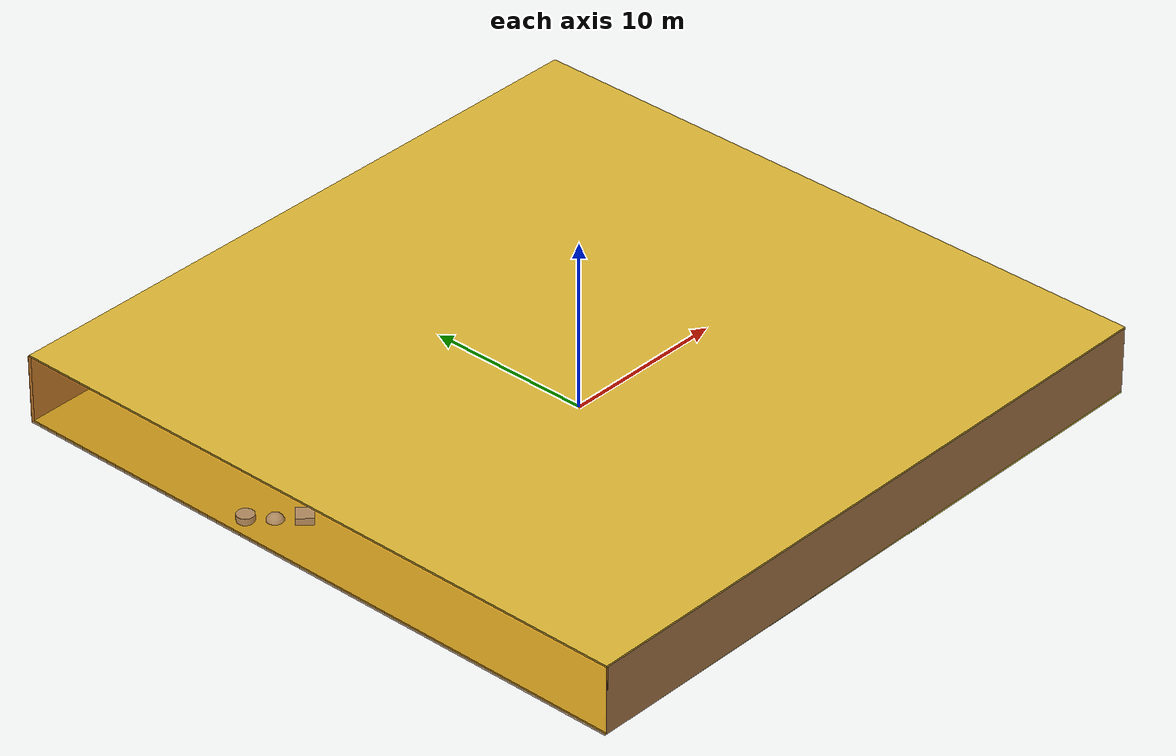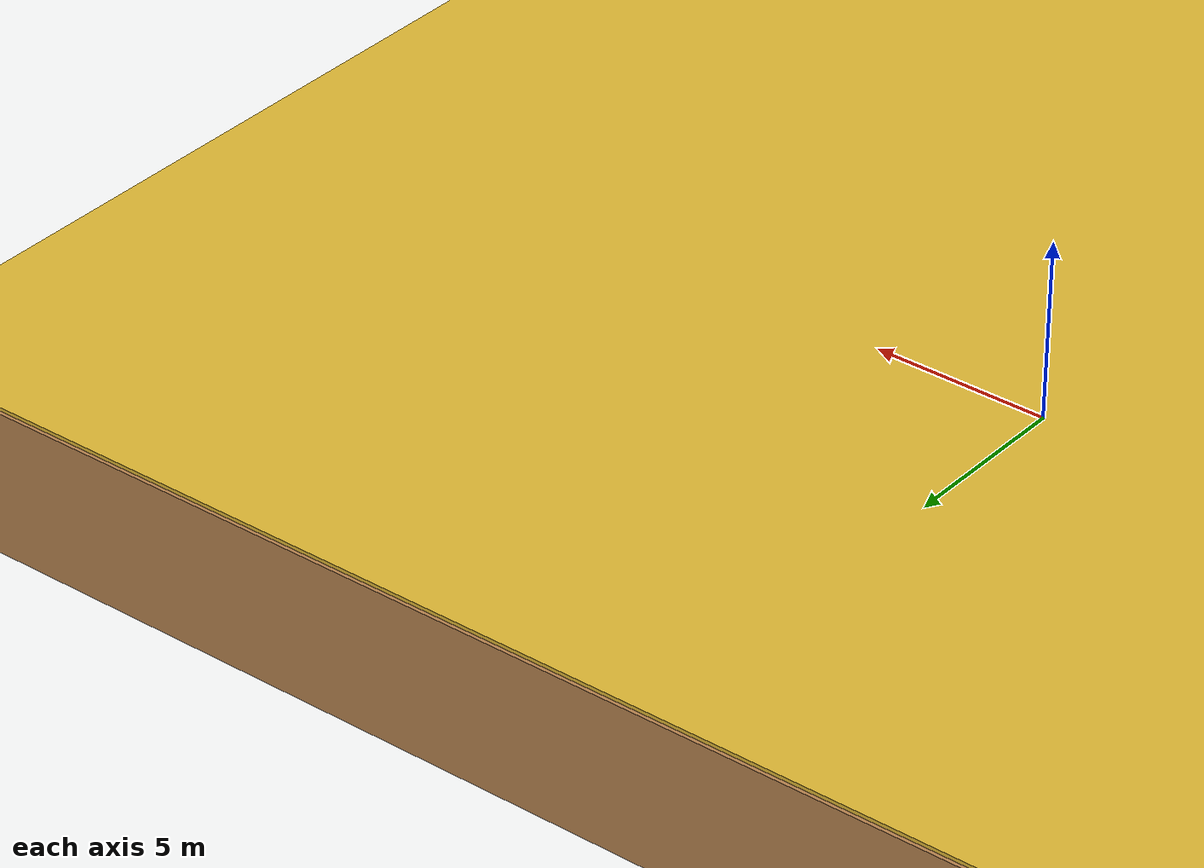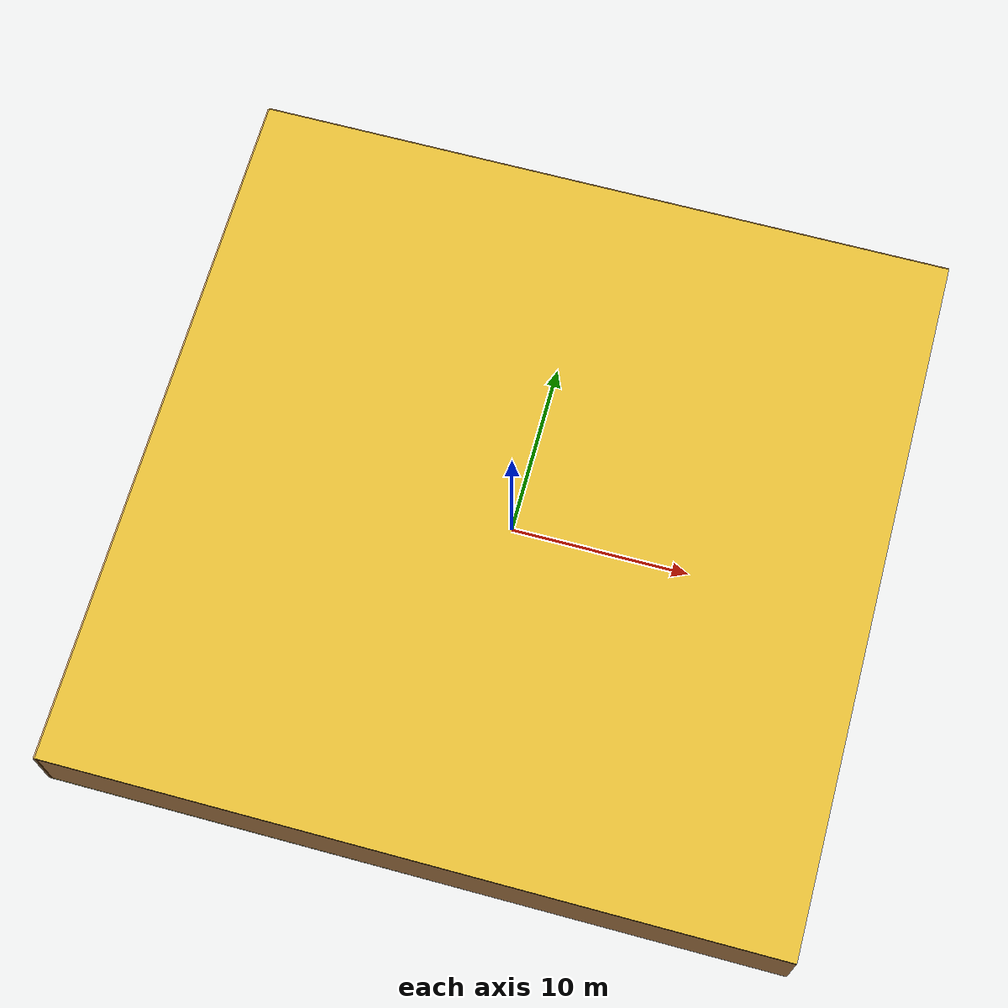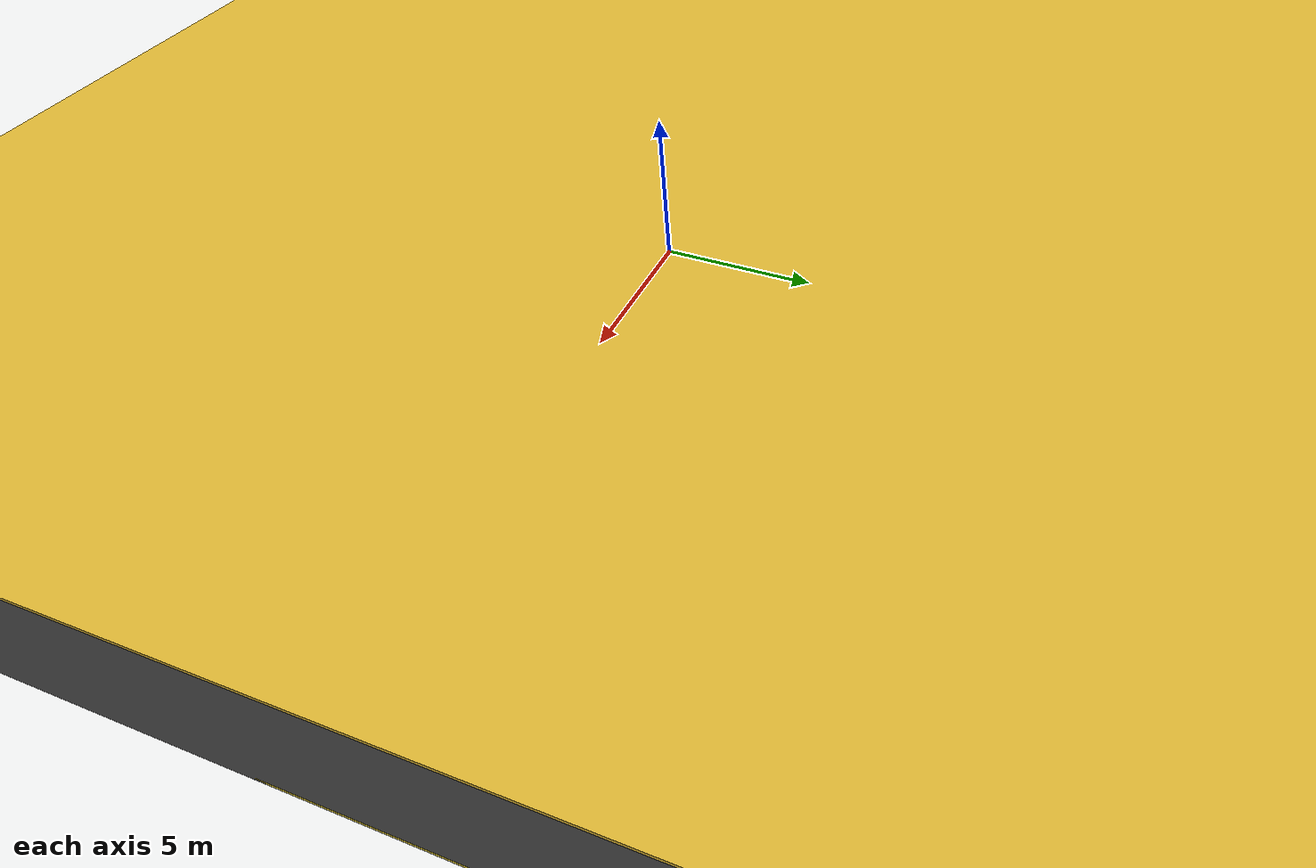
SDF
<sdf version="1.4">
 <world name="default">
  <physics type="ode">
   <max_step_size>0.001</max_step_size>
   <real_time_factor>1</real_time_factor>
   <real_time_update_rate>1000</real_time_update_rate>
   <gravity>0 0 -9.8</gravity>
  </physics>
  <scene><ambient>0.4 0.4 0.4 1</ambient><background>0.7 0.7 0.7 1</background><shadows>1</shadows></scene>
  <model name="Surrounding">
   <static>1</static>
   <link name="Ceiling">
    <collision name="Ceiling_Collision"><geometry><box><size>40 40 0.1</size></box></geometry></collision>
    <visual name="Ceiling_Visual">
     <geometry><box><size>40 40 0.1</size></box></geometry>
     <material>
      <script><uri>file://media/materials/scripts/gazebo.material</uri><name>Gazebo/Gold</name></script>
     </material>
    </visual>
    <pose>0 0 4.05 0 0 0</pose>
   </link>
   <link name="Wall_South">
    <collision name="Wall_South_Collision">
     <geometry><box><size>40 0 4</size></box></geometry>
     <pose>0 0 2 0 -0 0</pose>
    </collision>
    <visual name="Wall_South_Visual">
     <pose>0 0 2 0 -0 0</pose>
     <geometry><box><size>40 0 4</size></box></geometry>
     <material>
      <script><uri>file://media/materials/scripts/gazebo.material</uri><name>Gazebo/WoodFloor</name></script>
     </material>
    </visual>
    <velocity_decay><linear>0</linear><angular>0</angular></velocity_decay>
    <pose>0 -20 0 0 -0 0</pose>
   </link>
   <link name="Wall_East">
    <collision name="Wall_21_Collision">
     <geometry><box><size>40 0 4</size></box></geometry>
     <pose>0 0 2 0 -0 0</pose>
    </collision>
    <visual name="Wall_21_Visual">
     <pose>0 0 2 0 -0 0</pose>
     <geometry><box><size>40 0 4</size></box></geometry>
     <material>
      <script><uri>file://media/materials/scripts/gazebo.material</uri><name>Gazebo/Road</name></script>
     </material>
    </visual>
    <velocity_decay><linear>0</linear><angular>0</angular></velocity_decay>
    <pose>20 0 0 0 -0 1.5708</pose>
   </link>
   <link name="Wall_North">
    <collision name="Wall_22_Collision">
     <geometry><box><size>40 0.2 4</size></box></geometry>
     <pose>0 0 2 0 -0 0</pose>
    </collision>
    <visual name="Wall_22_Visual">
     <pose>0 0 2 0 -0 0</pose>
     <geometry><box><size>40 0.2 4</size></box></geometry>
     <material>
      <script><uri>file://media/materials/scripts/gazebo.material</uri><name>Gazebo/WoodPallet</name></script>
     </material>
    </visual>
    <velocity_decay><linear>0</linear><angular>0</angular></velocity_decay>
    <pose>0 20 0 0 -0 0</pose>
   </link>
   <link name="Wall_West">
    <collision name="Wall_23_Collision">
     <geometry><box><size>40 0.2 4</size></box></geometry>
     <pose>0 0 2 0 -0 0</pose>
    </collision>
    <visual name="Wall_23_Visual">
     <pose>0 0 2 0 -0 0</pose>
     <geometry><box><size>40 0.2 4</size></box></geometry>
     <material>
      <script>
       <uri>file://media/materials/scripts/gazebo.material</uri>
       <name>Gazebo/OrangeTransparent</name>
      </script>
     </material>
    </visual>
    <velocity_decay><linear>0</linear><angular>0</angular></velocity_decay>
    <pose>-20 0 0 0 0 -1.5708</pose>
   </link>
   <link name="Ground_link">
    <collision name="collision">
     <pose>0 0 .05 0 -0 0</pose>
     <geometry><box><size>40 40 0.1</size></box></geometry>
    </collision>
    <visual name="visual">
     <pose>0 0 .05 0 -0 0</pose>
     <geometry><box><size>40 40 0.1</size></box></geometry>
     <material>
      <script><uri>file://media/materials/scripts/gazebo.material</uri><name>Gazebo/ZincYellow</name></script>
     </material>
    </visual>
   </link>
   <static>1</static>
  </model>
  <spherical_coordinates>
   <surface_model>EARTH_WGS84</surface_model>
   <latitude_deg>0</latitude_deg>
   <longitude_deg>0</longitude_deg>
   <elevation>0</elevation>
   <heading_deg>0</heading_deg>
  </spherical_coordinates>
  <light name="lightball_0" type="diffuse">
   <diffuse>0.8 0.8 0.8 1</diffuse>
   <specular>0.2 0.2 0.2 1</specular>
   <attenuation>
    <range>100</range>
    <constant>0.7</constant>
    <linear>0.01</linear>
    <quadratic>0.001</quadratic>
   </attenuation>
   <direction>-0.5 0.1 -0.9</direction>
   <pose>-1.03677643835 6.9306158238 2.58871568664 0 0 0</pose>
  </light>
  <light name="lightball_1" type="diffuse">
   <diffuse>0.8 0.8 0.8 1</diffuse>
   <specular>0.2 0.2 0.2 1</specular>
   <attenuation>
    <range>100</range>
    <constant>0.7</constant>
    <linear>0.01</linear>
    <quadratic>0.001</quadratic>
   </attenuation>
   <direction>-0.5 0.1 -0.9</direction>
   <pose>-11.9734987459 1.67086065517 1.79950347775 0 0 0</pose>
  </light>
  <include>
   <uri>model://textured_shapes</uri>
   <pose>-17.9851201677 4.38975990479 0 0 0 0.762229068017</pose>
  </include>
  <include><uri>model://cabinet</uri><pose>-14.7613488819 -18.2119561224 0 0 0 1.92585648317</pose></include>
  <include><uri>model://cabinet</uri><pose>-14.4871125077 -14.6383673276 0 0 0 1.13743606851</pose></include>
  <include><uri>model://cabinet</uri><pose>-15.0415755425 -11.6792892443 0 0 0 1.83471001773</pose></include>
  <include>
   <uri>model://construction_cone</uri>
   <pose>-13.8100485043 0.858696210091 0 0 0 0.0443410410407</pose>
  </include>
  <include>
   <uri>model://construction_cone</uri>
   <pose>-11.7905632662 3.25259712674 0 0 0 1.32479747497</pose>
  </include>
  <include>
   <uri>model://construction_cone</uri>
   <pose>-11.5536264461 16.0757774661 0 0 0 0.450697257675</pose>
  </include>
  <include>
   <uri>model://construction_cone</uri>
   <pose>-9.00898259825 -15.4221463262 0 0 0 1.48689950705</pose>
  </include>
  <include><uri>model://table</uri><pose>-8.21329351286 2.79281171808 0 0 0 0.44453324208</pose></include>
  <include>
   <uri>model://textured_shapes</uri>
   <pose>-8.87189664488 16.1443453374 0 0 0 1.46254104439</pose>
  </include>
  <include>
   <uri>model://robocup_3Dsim_goal</uri>
   <pose>-4.42157645144 7.57308452482 0 0 0 1.15606351264</pose>
  </include>
  <include>
   <uri>model://robocup_3Dsim_goal</uri>
   <pose>-5.06135592865 16.0166059018 0 0 0 2.05027527489</pose>
  </include>
  <include><uri>model://cabinet</uri><pose>-2.3969393356 -16.4785609349 0 0 0 0.0963308082038</pose></include>
  <include><uri>model://table</uri><pose>-2.50746140914 8.3676466592 0 0 0 2.09689100576</pose></include>
  <include><uri>model://cabinet</uri><pose>-1.82516290817 16.2346698583 0 0 0 2.48294240994</pose></include>
  <include><uri>model://table</uri><pose>4.1677091361 -7.84612732945 0 0 0 1.25760386096</pose></include>
  <include>
   <uri>model://robocup_3Dsim_goal</uri>
   <pose>3.49327265102 4.5343239796 0 0 0 2.28569737149</pose>
  </include>
  <include>
   <uri>model://robocup_3Dsim_goal</uri>
   <pose>3.12874710848 17.8601387885 0 0 0 3.11531906475</pose>
  </include>
  <include>
   <uri>model://robocup_3Dsim_goal</uri>
   <pose>7.4145061137 7.29173006457 0 0 0 1.96431752299</pose>
  </include>
  <include>
   <uri>model://construction_cone</uri>
   <pose>5.39924989075 17.8289674106 0 0 0 0.598137146185</pose>
  </include>
  <include>
   <uri>model://textured_shapes</uri>
   <pose>9.19315618812 -4.94417383768 0 0 0 0.823433359244</pose>
  </include>
  <include><uri>model://table</uri><pose>9.75151047799 16.5417791252 0 0 0 0.228889159355</pose></include>
  <include><uri>model://table</uri><pose>13.5617808653 -13.45810743 0 0 0 2.95659169652</pose></include>
  <include>
   <uri>model://construction_cone</uri>
   <pose>11.5925887594 -5.40155715719 0 0 0 1.02266653334</pose>
  </include>
  <include><uri>model://table</uri><pose>11.8024161146 9.03543823186 0 0 0 2.79878934062</pose></include>
  <include>
   <uri>model://robocup_3Dsim_goal</uri>
   <pose>14.8633587737 -10.8459386529 0 0 0 1.37455212126</pose>
  </include>
  <include>
   <uri>model://construction_cone</uri>
   <pose>14.8752646867 6.63042831183 0 0 0 2.19340279217</pose>
  </include>
  <include>
   <uri>model://construction_cone</uri>
   <pose>15.5071521874 8.63923973177 0 0 0 1.52254333593</pose>
  </include>
  <include><uri>model://table</uri><pose>15.9215782033 17.3388449558 0 0 0 1.34146197571</pose></include>
  <include>
   <uri>model://construction_cone</uri>
   <pose>18.516580842 4.10301482951 0 0 0 1.11485996645</pose>
  </include>
 </world>
</sdf>

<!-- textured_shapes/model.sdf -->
<sdf version="1.6">
  <model name="textured_shapes">
    <pose>0 0 0.5 0 0 0</pose>
    <link name="box">
      <pose>0 -1.5 0 0 0 0</pose>
      <collision name="collision">
        <geometry>
          <box>
            <size>1 1 1</size>
          </box>
        </geometry>
      </collision>
      <visual name="visual">
        <geometry>
          <box>
            <size>1 1 1</size>
          </box>
        </geometry>
        <material>
          <script>
            <uri>model://../model_source/models/textured_shapes/materials/scripts</uri>
            <uri>model://../model_source/models/textured_shapes/materials/textures</uri>
            <name>TexturedShape/Squares</name>
          </script>
        </material>
      </visual>
    </link>
    <link name="sphere">
      <collision name="collision">
        <geometry>
          <sphere>
            <radius>0.5</radius>
          </sphere>
        </geometry>
      </collision>
      <visual name="visual">
        <geometry>
          <sphere>
            <radius>0.5</radius>
          </sphere>
        </geometry>
        <material>
          <script>
            <uri>model://../model_source/models/textured_shapes/materials/scripts</uri>
            <uri>model://../model_source/models/textured_shapes/materials/textures</uri>
            <name>TexturedShape/Squares</name>
          </script>
        </material>
      </visual>
    </link>
    <link name="cylinder">
      <pose>0 1.5 0 0 0 0</pose>
      <collision name="collision">
        <geometry>
          <cylinder>
            <radius>0.5</radius>
            <length>1</length>
          </cylinder>
        </geometry>
      </collision>
      <visual name="visual">
        <geometry>
          <cylinder>
            <radius>0.5</radius>
            <length>1</length>
          </cylinder>
        </geometry>
        <material>
          <script>
            <uri>model://../model_source/models/textured_shapes/materials/scripts</uri>
            <uri>model://../model_source/models/textured_shapes/materials/textures</uri>
            <name>TexturedShape/Squares</name>
          </script>
        </material>
      </visual>
    </link>
  </model>
</sdf>

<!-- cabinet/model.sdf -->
<sdf version="1.5">
  <model name="cabinet">
    <static>true</static>
    <link name="cabinet_bottom_plate">
      <inertial>
        <pose>0 0 -1 0 0 0</pose>
        <inertia>
          <ixx>2.050000</ixx>
          <ixy>0</ixy>
          <ixz>0</ixz>
          <iyy>2.050000</iyy>
          <iyz>0</iyz>
          <izz>2.050000</izz>
        </inertia>
        <mass>25.000000</mass>
      </inertial>
      <collision name="cabinet_bottom_plate_geom">
        <pose>0 0 0.010000 0 0 0</pose>
        <geometry>
          <box>
            <size>0.450000 0.450000 0.020000</size>
          </box>
        </geometry>
      </collision>
      <visual name="cabinet_bottom_plate_geom_visual">
        <pose>0 0 0.010000 0 0 0</pose>
        <geometry>
          <box>
            <size>0.450000 0.450000 0.020000</size>
          </box>
        </geometry>
        <material>
          <script>
            <uri>model://media/materials/scripts/gazebo.material</uri>
            <name>Gazebo/Wood</name>
          </script>
        </material>
      </visual>
      <collision name="cabinet_bottom_plate_geom_cabinet_back_plate">
        <pose>0.235000 0 0.510000 0 0 0</pose>
        <geometry>
          <box>
            <size>0.020000 0.450000 1.020000</size>
          </box>
        </geometry>
      </collision>
      <visual name="cabinet_bottom_plate_geom_cabinet_back_plate_visual">
        <pose>0.235000 0 0.510000 0 0 0</pose>
        <geometry>
          <box>
            <size>0.020000 0.450000 1.020000</size>
          </box>
        </geometry>
        <material>
          <script>
            <uri>model://media/materials/scripts/gazebo.material</uri>
            <name>Gazebo/Wood</name>
          </script>
        </material>
      </visual>
      <collision name="cabinet_bottom_plate_geom_cabinet_left_plate">
        <pose>0 0.235000 0.510000 0 0 0</pose>
        <geometry>
          <box>
            <size>0.450000 0.020000 1.020000</size>
          </box>
        </geometry>
      </collision>
      <visual name="cabinet_bottom_plate_geom_cabinet_left_plate_visual">
        <pose>0 0.235000 0.510000 0 0 0</pose>
        <geometry>
          <box>
            <size>0.450000 0.020000 1.020000</size>
          </box>
        </geometry>
        <material>
          <script>
            <uri>model://media/materials/scripts/gazebo.material</uri>
            <name>Gazebo/Wood</name>
          </script>
        </material>
      </visual>
      <collision name="cabinet_bottom_plate_geom_cabinet_middle_plate">
        <pose>0 0 0.510000 0 0 0</pose>
        <geometry>
          <box>
            <size>0.450000 0.450000 0.020000</size>
          </box>
        </geometry>
      </collision>
      <visual name="cabinet_bottom_plate_geom_cabinet_middle_plate_visual">
        <pose>0 0 0.510000 0 0 0</pose>
        <geometry>
          <box>
            <size>0.450000 0.450000 0.020000</size>
          </box>
        </geometry>
        <material>
          <script>
            <uri>model://media/materials/scripts/gazebo.material</uri>
            <name>Gazebo/Wood</name>
          </script>
        </material>
      </visual>
      <collision name="cabinet_bottom_plate_geom_cabinet_right_plate">
        <pose>0 -0.235000 0.510000 0 0 0</pose>
        <geometry>
          <box>
            <size>0.450000 0.020000 1.020000</size>
          </box>
        </geometry>
      </collision>
      <visual name="cabinet_bottom_plate_geom_cabinet_right_plate_visual">
        <pose>0 -0.235000 0.510000 0 0 0</pose>
        <geometry>
          <box>
            <size>0.450000 0.020000 1.020000</size>
          </box>
        </geometry>
        <material>
          <script>
            <uri>model://media/materials/scripts/gazebo.material</uri>
            <name>Gazebo/Wood</name>
          </script>
        </material>
      </visual>
      <collision name="cabinet_bottom_plate_geom_cabinet_top_plate">
        <pose>0 0 1.010000 0 0 0</pose>
        <geometry>
          <box>
            <size>0.450000 0.450000 0.020000</size>
          </box>
        </geometry>
      </collision>
      <visual name="cabinet_bottom_plate_geom_cabinet_top_plate_visual">
        <pose>0 0 1.010000 0 0 0</pose>
        <geometry>
          <box>
            <size>0.450000 0.450000 0.020000</size>
          </box>
        </geometry>
        <material>
          <script>
            <uri>model://media/materials/scripts/gazebo.material</uri>
            <name>Gazebo/Wood</name>
          </script>
        </material>
      </visual>
    </link>
  </model>
</sdf>

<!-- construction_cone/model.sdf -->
<sdf version="1.5">
  <model name="Construction Cone">
    <link name="link">
      <collision name="collision">
        <geometry>
          <mesh>
            <scale>10 10 10</scale>
            <uri>file://isr-testbed/construction_cone/meshes/construction_cone.dae</uri>
          </mesh>
        </geometry>
      </collision>
      <visual name="visual">
        <geometry>
          <mesh>
            <scale>10 10 10</scale>
            <uri>file://isr-testbed/construction_cone/meshes/construction_cone.dae</uri>
          </mesh>
        </geometry>
      </visual>
    </link>
  </model>
</sdf>

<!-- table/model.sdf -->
<sdf version="1.5">
  <model name="table">
    <static>true</static>
    <link name="link">
      <collision name="surface">
        <pose>0 0 1.0 0 0 0</pose>
        <geometry>
          <box>
            <size>1.5 0.8 0.03</size>
          </box>
        </geometry>
        <surface>
          <friction>
            <ode>
              <mu>0.6</mu>
              <mu2>0.6</mu2>
            </ode>
          </friction>
        </surface>
      </collision>
      <visual name="visual1">
        <pose>0 0 1.0 0 0 0</pose>
        <geometry>
          <box>
            <size>1.5 0.8 0.03</size>
          </box>
        </geometry>
        <material>
          <script>
            <uri>model://media/materials/scripts/gazebo.material</uri>
            <name>Gazebo/Wood</name>
          </script>
        </material>
      </visual>
      <collision name="front_left_leg">
        <pose>0.68 0.38 0.5 0 0 0</pose>
        <geometry>
          <cylinder>
            <radius>0.02</radius>
            <length>1.0</length>
          </cylinder>
        </geometry>
      </collision>
      <visual name="front_left_leg">
        <pose>0.68 0.38 0.5 0 0 0</pose>
        <geometry>
          <cylinder>
            <radius>0.02</radius>
            <length>1.0</length>
          </cylinder>
        </geometry>
        <material>
          <script>
            <uri>model://media/materials/scripts/gazebo.material</uri>
            <name>Gazebo/Grey</name>
          </script>
        </material>
      </visual>
      <collision name="front_right_leg">
        <pose>0.68 -0.38 0.5 0 0 0</pose>
        <geometry>
          <cylinder>
            <radius>0.02</radius>
            <length>1.0</length>
          </cylinder>
        </geometry>
      </collision>
      <visual name="front_right_leg">
        <pose>0.68 -0.38 0.5 0 0 0</pose>
        <geometry>
          <cylinder>
            <radius>0.02</radius>
            <length>1.0</length>
          </cylinder>
        </geometry>
        <material>
          <script>
            <uri>model://media/materials/scripts/gazebo.material</uri>
            <name>Gazebo/Grey</name>
          </script>
        </material>
      </visual>
      <collision name="back_right_leg">
        <pose>-0.68 -0.38 0.5 0 0 0</pose>
        <geometry>
          <cylinder>
            <radius>0.02</radius>
            <length>1.0</length>
          </cylinder>
        </geometry>
      </collision>
      <visual name="back_right_leg">
        <pose>-0.68 -0.38 0.5 0 0 0</pose>
        <geometry>
          <cylinder>
            <radius>0.02</radius>
            <length>1.0</length>
          </cylinder>
        </geometry>
        <material>
          <script>
            <uri>model://media/materials/scripts/gazebo.material</uri>
            <name>Gazebo/Grey</name>
          </script>
        </material>
      </visual>
      <collision name="back_left_leg">
        <pose>-0.68 0.38 0.5 0 0 0</pose>
        <geometry>
          <cylinder>
            <radius>0.02</radius>
            <length>1.0</length>
          </cylinder>
        </geometry>
      </collision>
      <visual name="back_left_leg">
        <pose>-0.68 0.38 0.5 0 0 0</pose>
        <geometry>
          <cylinder>
            <radius>0.02</radius>
            <length>1.0</length>
          </cylinder>
        </geometry>
        <material>
          <script>
            <uri>model://media/materials/scripts/gazebo.material</uri>
            <name>Gazebo/Grey</name>
          </script>
        </material>
      </visual>
    </link>
  </model>
</sdf>

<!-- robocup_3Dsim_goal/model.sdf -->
<sdf version="1.5">
  <model name="robocup_3d_goal">
    <static>true</static>
    <link name="left_post">
      <pose>0 1.05 0.45 0 0 0</pose>
      <collision name="collision">
        <geometry>
          <cylinder>
            <radius>0.05</radius>
            <length>0.9</length>
          </cylinder>
        </geometry>
      </collision>
      <visual name="visual">
        <geometry>
          <cylinder>
            <radius>0.05</radius>
            <length>0.9</length>
          </cylinder>
        </geometry>
        <material>
          <script>
            <uri>file://media/materials/scripts/gazebo.material</uri>
            <name>Gazebo/ZincYellow</name>
          </script>
        </material>
      </visual>
    </link>
    <link name="left_support_horiz_lower">
      <pose>0.30 1.05 0.01 0 0 0</pose>
      <collision name="collision">
        <geometry>
          <box>
            <size>0.50 0.02 0.02</size>
          </box>
        </geometry>
      </collision>
      <visual name="visual">
        <geometry>
          <box>
            <size>0.50 0.02 0.02</size>
          </box>
        </geometry>
        <material>
          <script>
            <uri>file://media/materials/scripts/gazebo.material</uri>
            <name>Gazebo/White</name>
          </script>
        </material>
      </visual>
    </link>
    <link name="left_support_horiz_upper">
      <pose>0.30 1.05 0.79 0 0 0</pose>
      <collision name="collision">
        <geometry>
          <box>
            <size>0.50 0.02 0.02</size>
          </box>
        </geometry>
      </collision>
      <visual name="visual">
        <geometry>
          <box>
            <size>0.50 0.02 0.02</size>
          </box>
        </geometry>
        <material>
          <script>
            <uri>file://media/materials/scripts/gazebo.material</uri>
            <name>Gazebo/White</name>
          </script>
        </material>
      </visual>
    </link>
    <link name="left_support_vertical">
      <pose>0.56 1.05 0.4 0 1.5708 0</pose>
      <collision name="collision">
        <geometry>
          <box>
            <size>0.80 0.02 0.02</size>
          </box>
        </geometry>
      </collision>
      <visual name="visual">
        <geometry>
          <box>
            <size>0.80 0.02 0.02</size>
          </box>
        </geometry>
        <material>
          <script>
            <uri>file://media/materials/scripts/gazebo.material</uri>
            <name>Gazebo/White</name>
          </script>
        </material>
      </visual>
    </link>
    <link name="right_support_horiz_lower">
      <pose>0.30 -1.05 0.01 0 0 0</pose>
      <collision name="collision">
        <geometry>
          <box>
            <size>0.50 0.02 0.02</size>
          </box>
        </geometry>
      </collision>
      <visual name="visual">
        <geometry>
          <box>
            <size>0.50 0.02 0.02</size>
          </box>
        </geometry>
        <material>
          <script>
            <uri>file://media/materials/scripts/gazebo.material</uri>
            <name>Gazebo/White</name>
          </script>
        </material>
      </visual>
    </link>
    <link name="right_support_horiz_upper">
      <pose>0.30 -1.05 0.79 0 0 0</pose>
      <collision name="collision">
        <geometry>
          <box>
            <size>0.50 0.02 0.02</size>
          </box>
        </geometry>
      </collision>
      <visual name="visual">
        <geometry>
          <box>
            <size>0.50 0.02 0.02</size>
          </box>
        </geometry>
        <material>
          <script>
            <uri>file://media/materials/scripts/gazebo.material</uri>
            <name>Gazebo/White</name>
          </script>
        </material>
      </visual>
    </link>
    <link name="right_support_vertical">
      <pose>0.56 -1.05 0.4 0 1.5708 0</pose>
      <collision name="collision">
        <geometry>
          <box>
            <size>0.80 0.02 0.02</size>
          </box>
        </geometry>
      </collision>
      <visual name="visual">
        <geometry>
          <box>
            <size>0.80 0.02 0.02</size>
          </box>
        </geometry>
        <material>
          <script>
            <uri>file://media/materials/scripts/gazebo.material</uri>
            <name>Gazebo/White</name>
          </script>
        </material>
      </visual>
    </link>
    <link name="center_support_horiz_lower">
      <pose>0.56 0 0.01 0 1.5708 0</pose>
      <collision name="collision">
        <geometry>
          <box>
            <size>0.02 2.08 0.02</size>
          </box>
        </geometry>
      </collision>
      <visual name="visual">
        <geometry>
          <box>
            <size>0.02 2.08 0.02</size>
          </box>
        </geometry>
        <material>
          <script>
            <uri>file://media/materials/scripts/gazebo.material</uri>
            <name>Gazebo/White</name>
          </script>
        </material>
      </visual>
    </link>
    <link name="center_support_horiz_upper">
      <pose>0.56 0 0.79 0 1.5708 0</pose>
      <collision name="collision">
        <geometry>
          <box>
            <size>0.02 2.08 0.02</size>
          </box>
        </geometry>
      </collision>
      <visual name="visual">
        <geometry>
          <box>
            <size>0.02 2.08 0.02</size>
          </box>
        </geometry>
        <material>
          <script>
            <uri>file://media/materials/scripts/gazebo.material</uri>
            <name>Gazebo/White</name>
          </script>
        </material>
      </visual>
    </link>
    <link name="right_post">
      <pose>0 -1.05 0.45 0 0 0</pose>
      <collision name="collision">
        <geometry>
          <cylinder>
            <radius>0.05</radius>
            <length>0.9</length>
          </cylinder>
        </geometry>
      </collision>
      <visual name="visual">
        <geometry>
          <cylinder>
            <radius>0.05</radius>
            <length>0.9</length>
          </cylinder>
        </geometry>
        <material>
          <script>
            <uri>file://media/materials/scripts/gazebo.material</uri>
            <name>Gazebo/ZincYellow</name>
          </script>
        </material>
      </visual>
    </link>
    <link name="crossbar">
      <pose>0 0 0.85 1.57 1.57 0</pose>
      <collision name="collision">
        <geometry>
          <cylinder>
            <radius>0.05</radius>
            <length>2.0</length>
          </cylinder>
        </geometry>
      </collision>
      <visual name="visual">
        <geometry>
          <cylinder>
            <radius>0.05</radius>
            <length>2.0</length>
          </cylinder>
        </geometry>
        <material>
          <script>
            <uri>file://media/materials/scripts/gazebo.material</uri>
            <name>Gazebo/ZincYellow</name>
          </script>
        </material>
      </visual>
    </link>
    <link name="center_net">
      <pose>0.56 0 0.40 0 0 0</pose>
      <collision name="collision">
        <geometry>
          <box>
            <size>0.01 2.1 0.80</size>
          </box>
        </geometry>
      </collision>
      <visual name="visual">
        <geometry>
          <box>
            <size>0.01 2.1 0.80</size>
          </box>
        </geometry>
        <material>
          <script>
            <uri>model://../model_source/models/robocup09_spl_field/materials/scripts/</uri>
            <uri>model://../model_source/models/robocup09_spl_field/materials/textures/</uri>
            <name>RoboCup/Net</name>
          </script>
        </material>
      </visual>
    </link>
    <link name="left_net">
      <pose>0.30 1.05 0.40 0 0 0</pose>
      <collision name="collision">
        <geometry>
          <box>
            <size>0.50 0.01 0.76</size>
          </box>
        </geometry>
      </collision>
      <visual name="visual">
        <geometry>
          <box>
            <size>0.50 0.01 0.76</size>
          </box>
        </geometry>
        <material>
          <script>
            <uri>model://../model_source/models/robocup09_spl_field/materials/scripts/</uri>
            <uri>model://../model_source/models/robocup09_spl_field/materials/textures/</uri>
            <name>RoboCup/Net</name>
          </script>
        </material>
      </visual>
    </link>
    <link name="right_net">
      <pose>0.30 -1.05 0.40 0 0 0</pose>
      <collision name="collision">
        <geometry>
          <box>
            <size>0.50 0.01 0.76</size>
          </box>
        </geometry>
      </collision>
      <visual name="visual">
        <geometry>
          <box>
            <size>0.50 0.01 0.76</size>
          </box>
        </geometry>
        <material>
          <script>
            <uri>model://../model_source/models/robocup09_spl_field/materials/scripts/</uri>
            <uri>model://../model_source/models/robocup09_spl_field/materials/textures/</uri>
            <name>RoboCup/Net</name>
          </script>
        </material>
      </visual>
    </link>
  </model>
</sdf>
